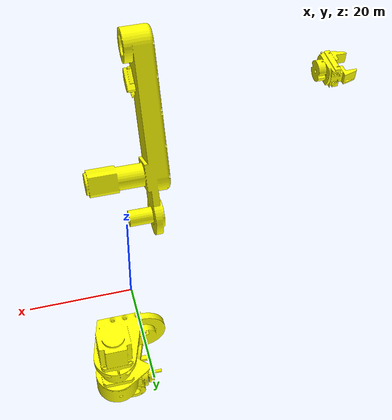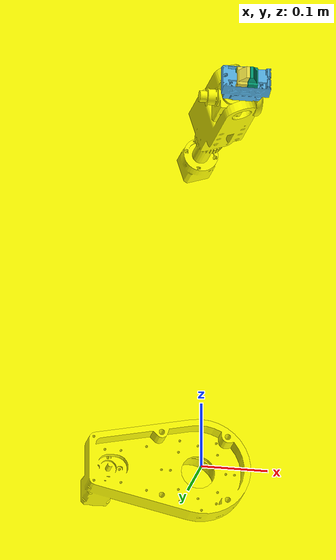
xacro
<?xml version="1.0"?>
<robot xmlns:xacro="http://www.ros.org/wiki/xacro" name="ar_robot">
    <xacro:arg name="initial_positions_file" default="initial_positions.yaml" />

    <!-- Import ar_robot urdf file -->
    <xacro:include filename="$(find ar_description)/urdf/ar.urdf" />

    <!-- Import control_xacro -->
    <xacro:include filename="ar_robot.ros2_control.xacro" />

    <xacro:ar_robot_ros2_control name="FakeSystem" initial_positions_file="$(arg initial_positions_file)"/>

</robot>

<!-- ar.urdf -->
<!-- |    This document was autogenerated by xacro from ar_description/urdf/ar.urdf.xacro | -->
<!-- |    EDITING THIS FILE BY HAND IS NOT RECOMMENDED                                 | -->
<robot name="ar_robot">
  <link name="world"/>
  <joint name="base_joint" type="fixed">
    <origin rpy="0 0 0" xyz="0 0 0"/>
    <parent link="world"/>
    <child link="base_link"/>
  </joint>
  <link name="base_link">
    <inertial>
      <origin rpy="0 0 0" xyz="-4.6941E-06 0.054174 0.038824"/>
      <mass value="0.7102"/>
      <inertia ixx="0.0039943" ixy="3.697E-07" ixz="-5.7364E-08" iyy="0.0014946" iyz="-0.00036051" izz="0.0042554"/>
    </inertial>
    <visual>
      <origin rpy="0 0 0" xyz="0 0 0"/>
      <geometry>
        <mesh filename="file:///home/yifei/src/ar4_ros_driver/install/ar_description/share/ar_description/meshes/ar4/base_link.STL"/>
      </geometry>
      <material name="">
        <color rgba="1 1 0 1"/>
      </material>
    </visual>
    <collision>
      <origin rpy="0 0 0" xyz="0 0 0"/>
      <geometry>
        <mesh filename="file:///home/yifei/src/ar4_ros_driver/install/ar_description/share/ar_description/meshes/ar4/base_link.STL"/>
      </geometry>
    </collision>
  </link>
  <link name="link_1">
    <inertial>
      <origin rpy="0 0 0" xyz="-0.022706 0.04294 -0.12205"/>
      <mass value="0.88065"/>
      <inertia ixx="0.0034" ixy="0.00042296" ixz="-0.00089231" iyy="0.0041778" iyz="0.0010848" izz="0.0027077"/>
    </inertial>
    <visual>
      <origin rpy="0 0 0" xyz="0 0 0"/>
      <geometry>
        <mesh filename="file:///home/yifei/src/ar4_ros_driver/install/ar_description/share/ar_description/meshes/ar4/link_1.STL"/>
      </geometry>
      <material name="">
        <color rgba="1 1 0 1"/>
      </material>
    </visual>
    <collision>
      <origin rpy="0 0 0" xyz="0 0 0"/>
      <geometry>
        <mesh filename="file:///home/yifei/src/ar4_ros_driver/install/ar_description/share/ar_description/meshes/ar4/link_1.STL"/>
      </geometry>
    </collision>
  </link>
  <joint name="joint_1" type="revolute">
    <origin rpy="3.141592653589793 0 0" xyz="0 0 0.003445"/>
    <parent link="base_link"/>
    <child link="link_1"/>
    <axis xyz="0 0 1"/>
    <limit effort="0" lower="-2.96705972839036" upper="2.96705972839036" velocity="0.5"/>
  </joint>
  <link name="link_2">
    <inertial>
      <origin rpy="0 0 0" xyz="0.064818 -0.11189 -0.038671"/>
      <mass value="0.57738"/>
      <inertia ixx="0.0047312" ixy="0.0022624" ixz="0.00032144" iyy="0.0020836" iyz="-0.00056569" izz="0.0056129"/>
    </inertial>
    <visual>
      <origin rpy="0 0 0" xyz="0 0 0"/>
      <geometry>
        <mesh filename="file:///home/yifei/src/ar4_ros_driver/install/ar_description/share/ar_description/meshes/ar4/link_2.STL"/>
      </geometry>
      <material name="">
        <color rgba="1 1 0 1"/>
      </material>
    </visual>
    <collision>
      <origin rpy="0 0 0" xyz="0 0 0"/>
      <geometry>
        <mesh filename="file:///home/yifei/src/ar4_ros_driver/install/ar_description/share/ar_description/meshes/ar4/link_2.STL"/>
      </geometry>
    </collision>
  </link>
  <joint name="joint_2" type="revolute">
    <origin rpy="1.5708 0.5236 -1.5708" xyz="0 0.064146 -0.16608"/>
    <parent link="link_1"/>
    <child link="link_2"/>
    <axis xyz="0 0 -1"/>
    <limit effort="0.5" lower="-0.7330382858376184" upper="1.5707963267948966" velocity="0"/>
  </joint>
  <link name="link_3">
    <inertial>
      <origin rpy="0 0 0" xyz="-0.00029765 -0.023661 -0.0019125"/>
      <mass value="0.1787"/>
      <inertia ixx="0.0001685" ixy="-2.7713E-05" ixz="5.6885E-06" iyy="0.00012865" iyz="2.9256E-05" izz="0.00020744"/>
    </inertial>
    <visual>
      <origin rpy="0 0 0" xyz="0 0 0"/>
      <geometry>
        <mesh filename="file:///home/yifei/src/ar4_ros_driver/install/ar_description/share/ar_description/meshes/ar4/link_3.STL"/>
      </geometry>
      <material name="">
        <color rgba="1 1 0 1"/>
      </material>
    </visual>
    <collision>
      <origin rpy="0 0 0" xyz="0 0 0"/>
      <geometry>
        <mesh filename="file:///home/yifei/src/ar4_ros_driver/install/ar_description/share/ar_description/meshes/ar4/link_3.STL"/>
      </geometry>
    </collision>
  </link>
  <joint name="joint_3" type="revolute">
    <origin rpy="0 0 -2.61799" xyz="0.1525 -0.26414 0"/>
    <parent link="link_2"/>
    <child link="link_3"/>
    <axis xyz="0 0 -1"/>
    <limit effort="0" lower="-1.5533430342749532" upper="0.9075712110370513" velocity="0.5"/>
  </joint>
  <link name="link_4">
    <inertial>
      <origin rpy="0 0 0" xyz="-0.0016798 -0.00057319 -0.074404"/>
      <mass value="0.34936"/>
      <inertia ixx="0.0030532" ixy="-1.8615E-05" ixz="-7.0047E-05" iyy="0.0031033" iyz="-2.3301E-05" izz="0.00022264"/>
    </inertial>
    <visual>
      <origin rpy="0 0 0" xyz="0 0 0"/>
      <geometry>
        <mesh filename="file:///home/yifei/src/ar4_ros_driver/install/ar_description/share/ar_description/meshes/ar4/link_4.STL"/>
      </geometry>
      <material name="">
        <color rgba="1 1 0 1"/>
      </material>
    </visual>
    <collision>
      <origin rpy="0 0 0" xyz="0 0 0"/>
      <geometry>
        <mesh filename="file:///home/yifei/src/ar4_ros_driver/install/ar_description/share/ar_description/meshes/ar4/link_4.STL"/>
      </geometry>
    </collision>
  </link>
  <joint name="joint_4" type="revolute">
    <origin rpy="1.5708 -1.2554 -1.5708" xyz="0 0 0.00675"/>
    <parent link="link_3"/>
    <child link="link_4"/>
    <axis xyz="0 0 -1"/>
    <limit effort="0" lower="-2.8797932657906435" upper="2.8797932657906435" velocity="0.5"/>
  </joint>
  <link name="link_5">
    <inertial>
      <origin rpy="0 0 0" xyz="0.0015066 -1.3102E-05 -0.012585"/>
      <mass value="0.11562"/>
      <inertia ixx="5.5035E-05" ixy="-1.019E-08" ixz="-2.6243E-06" iyy="8.2921E-05" iyz="1.4437E-08" izz="5.2518E-05"/>
    </inertial>
    <visual>
      <origin rpy="0 0 0" xyz="0 0 0"/>
      <geometry>
        <mesh filename="file:///home/yifei/src/ar4_ros_driver/install/ar_description/share/ar_description/meshes/ar4/link_5.STL"/>
      </geometry>
      <material name="">
        <color rgba="1 1 0 1"/>
      </material>
    </visual>
    <collision>
      <origin rpy="0 0 0" xyz="0 0 0"/>
      <geometry>
        <mesh filename="file:///home/yifei/src/ar4_ros_driver/install/ar_description/share/ar_description/meshes/ar4/link_5.STL"/>
      </geometry>
    </collision>
  </link>
  <joint name="joint_5" type="revolute">
    <origin rpy="3.141592653589793 0 -2.8262" xyz="0 0 -0.22225"/>
    <parent link="link_4"/>
    <child link="link_5"/>
    <axis xyz="1 0 0"/>
    <limit effort="0" lower="-1.8325957145940461" upper="1.8325957145940461" velocity="0.5"/>
  </joint>
  <link name="link_6">
    <inertial>
      <origin rpy="0 0 0" xyz="2.9287E-10 -1.6472E-09 0.0091432"/>
      <mass value="0.013863"/>
      <inertia ixx="1.3596E-06" ixy="3.0585E-13" ixz="5.7102E-14" iyy="1.7157E-06" iyz="6.3369E-09" izz="2.4332E-06"/>
    </inertial>
    <visual>
      <origin rpy="0 0 0" xyz="0 0 0"/>
      <geometry>
        <mesh filename="file:///home/yifei/src/ar4_ros_driver/install/ar_description/share/ar_description/meshes/ar4/link_6.STL"/>
      </geometry>
      <material name="">
        <color rgba="1 1 0 1"/>
      </material>
    </visual>
    <collision>
      <origin rpy="0 0 0" xyz="0 0 0"/>
      <geometry>
        <mesh filename="file:///home/yifei/src/ar4_ros_driver/install/ar_description/share/ar_description/meshes/ar4/link_6.STL"/>
      </geometry>
    </collision>
  </link>
  <joint name="joint_6" type="revolute">
    <origin rpy="0 0 3.1416" xyz="-0.000294 0 0.02117"/>
    <parent link="link_5"/>
    <child link="link_6"/>
    <axis xyz="0 0 1"/>
    <limit effort="0" lower="-2.705260340591211" upper="2.705260340591211" velocity="0.5"/>
  </joint>
  <!-- center of the end effector mounting surface on link_6 -->
  <link name="ee_link"/>
  <joint name="ee_joint" type="fixed">
    <parent link="link_6"/>
    <child link="ee_link"/>
    <origin rpy="0 0 0" xyz="0 0 0.016"/>
  </joint>
  <joint name="gripper_base_joint" type="fixed">
    <origin rpy="-1.5708 0.0 0.0" xyz="0.0 0.0 0.0"/>
    <parent link="ee_link"/>
    <child link="gripper_base_link"/>
  </joint>
  <link name="gripper_base_link">
    <visual>
      <geometry>
        <mesh filename="file:///home/yifei/src/ar4_ros_driver/install/ar_description/share/ar_description/meshes/ar4_gripper/gripper_base_link.stl"/>
      </geometry>
    </visual>
    <collision>
      <geometry>
        <mesh filename="file:///home/yifei/src/ar4_ros_driver/install/ar_description/share/ar_description/meshes/ar4_gripper/gripper_base_link.stl"/>
      </geometry>
    </collision>
    <inertial>
      <origin xyz="-0.00073621 -0.02341392 -0.00435302"/>
      <mass value="0.08"/>
      <inertia ixx="0.00002375" ixy="0.00000002" ixz="-0.00000017" iyy="0.00004082" iyz="-0.00000029" izz="0.00004254"/>
    </inertial>
  </link>
  <link name="gripper_jaw1_link">
    <visual>
      <geometry>
        <mesh filename="file:///home/yifei/src/ar4_ros_driver/install/ar_description/share/ar_description/meshes/ar4_gripper/gripper_jaw1_link.stl"/>
      </geometry>
    </visual>
    <collision>
      <geometry>
        <mesh filename="file:///home/yifei/src/ar4_ros_driver/install/ar_description/share/ar_description/meshes/ar4_gripper/gripper_jaw1_link.stl"/>
      </geometry>
    </collision>
    <inertial>
      <origin xyz="-0.00435839 -0.00469536 0.00757141"/>
      <mass value="0.01"/>
      <inertia ixx="0.00000123" ixy="-0.00000004" ixz="0.00000012" iyy="0.00000115" iyz="0.00000016" izz="0.00000102"/>
    </inertial>
  </link>
  <link name="gripper_jaw2_link">
    <visual>
      <geometry>
        <mesh filename="file:///home/yifei/src/ar4_ros_driver/install/ar_description/share/ar_description/meshes/ar4_gripper/gripper_jaw2_link.stl"/>
      </geometry>
    </visual>
    <collision>
      <geometry>
        <mesh filename="file:///home/yifei/src/ar4_ros_driver/install/ar_description/share/ar_description/meshes/ar4_gripper/gripper_jaw2_link.stl"/>
      </geometry>
    </collision>
    <inertial>
      <origin xyz="-0.00423971 -0.00491236 0.00814582"/>
      <mass value="0.01"/>
      <inertia ixx="0.00000118" ixy="-0.00000004" ixz="0.00000013" iyy="0.00000110" iyz="0.00000013" izz="0.00000101"/>
    </inertial>
  </link>
  <joint name="gripper_jaw1_joint" type="prismatic">
    <origin rpy="0.0 0.0 0.0" xyz="0.0 -0.036 -0.0155"/>
    <parent link="gripper_base_link"/>
    <child link="gripper_jaw1_link"/>
    <axis xyz="1 0 0"/>
    <limit effort="0" lower="-0.014" upper="0" velocity="0.1"/>
  </joint>
  <joint name="gripper_jaw2_joint" type="prismatic">
    <origin rpy="0.0 -3.141592653589793 0.0" xyz="0.0 -0.036 0.0097"/>
    <parent link="gripper_base_link"/>
    <child link="gripper_jaw2_link"/>
    <axis xyz="1 0 0"/>
    <limit effort="0" lower="-0.014" upper="0" velocity="0.1"/>
    <mimic joint="gripper_jaw1_joint" multiplier="1" offset="0"/>
  </joint>
</robot>
